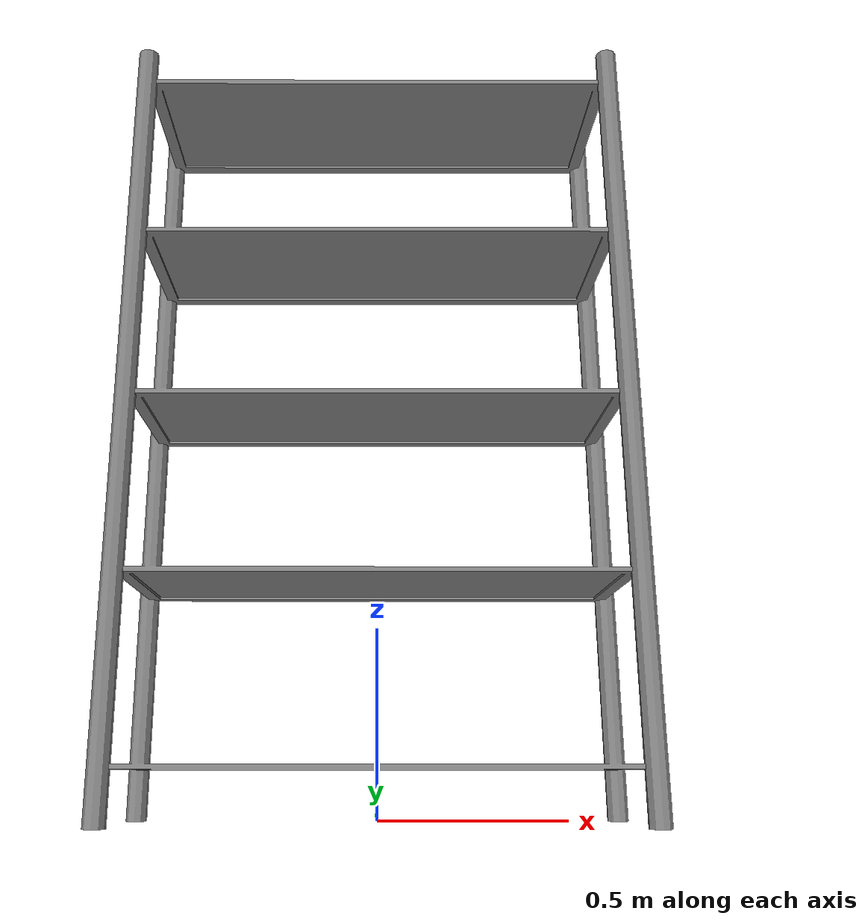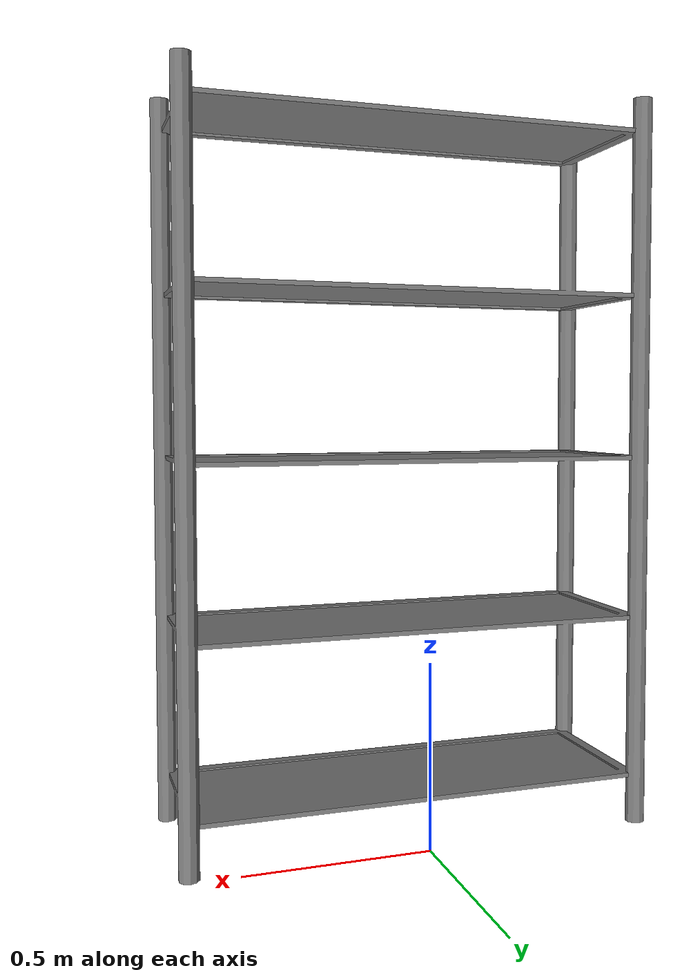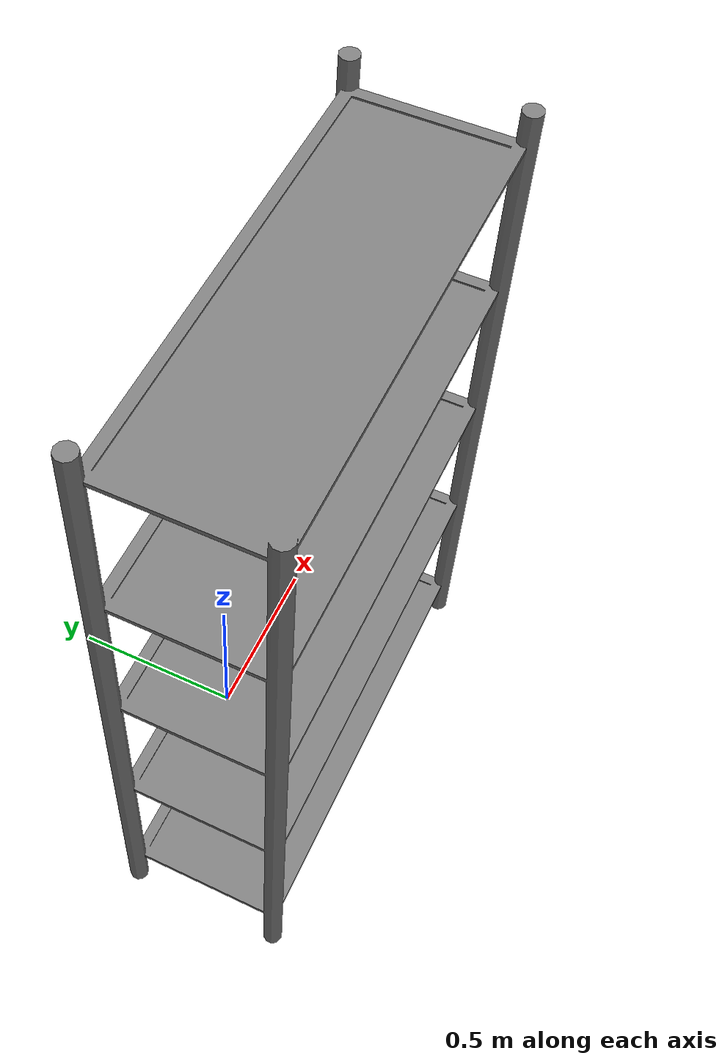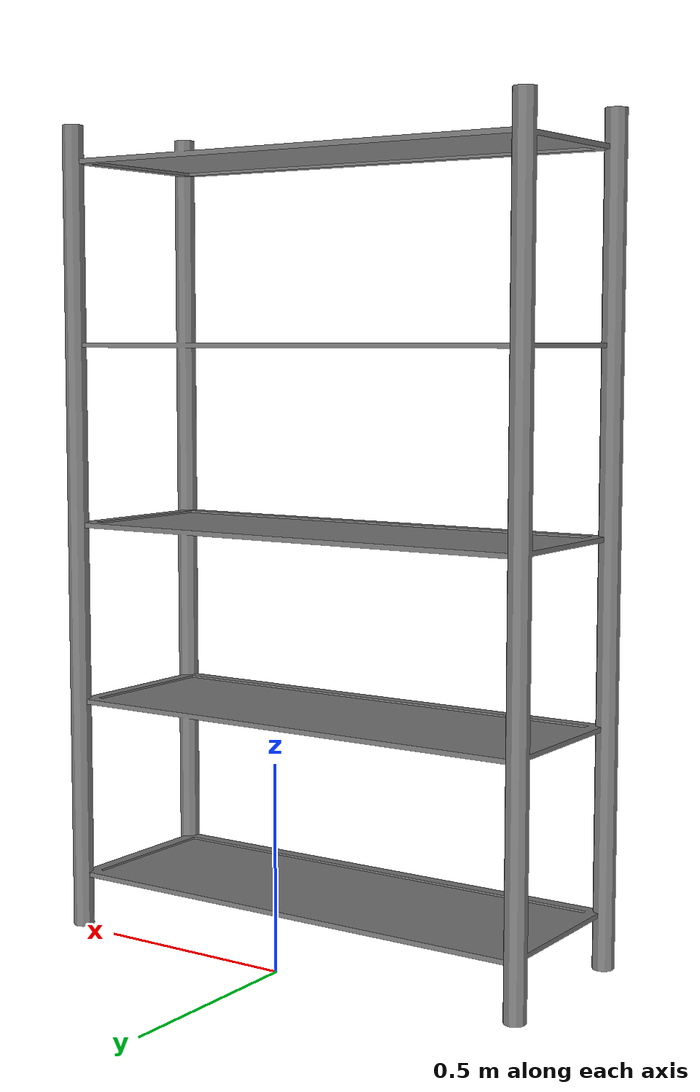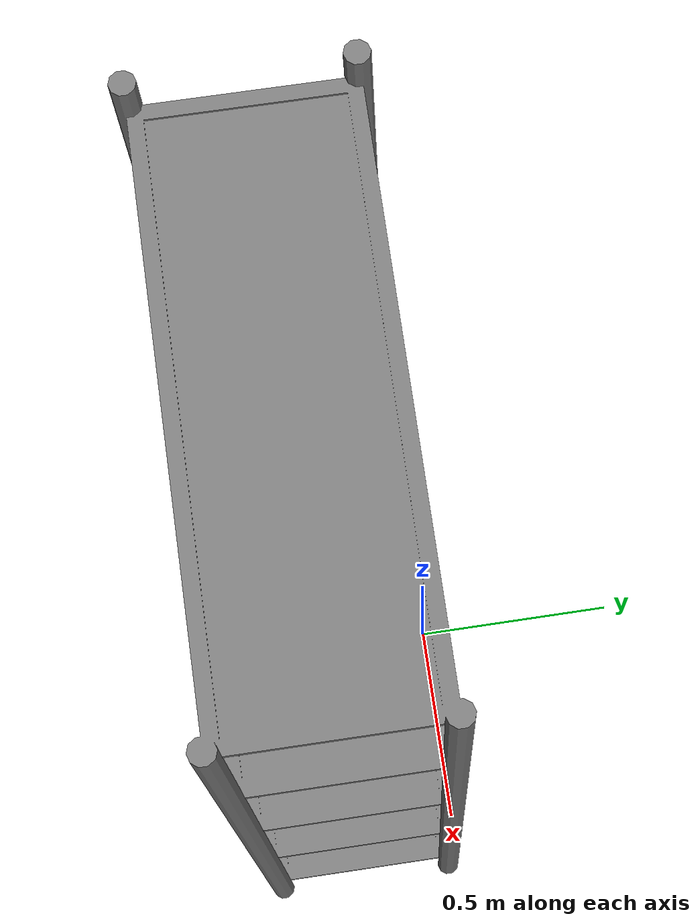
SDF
<?xml version="1.0" ?>
<sdf version="1.5">
  <model name="shelf">
    <link name="link">
      <pose>0 0 0 0 0 0</pose>
      <collision name="collision">
        <geometry>
          <mesh>
            <uri>model://shelf/meshes/model.dae</uri>
          </mesh>
        </geometry>
      </collision>
      <visual name="visual">
        <geometry>
          <mesh>
            <uri>model://shelf/meshes/model.dae</uri>
          </mesh>
        </geometry>
      </visual>
    </link>
    <static>1</static>
  </model>
</sdf>
